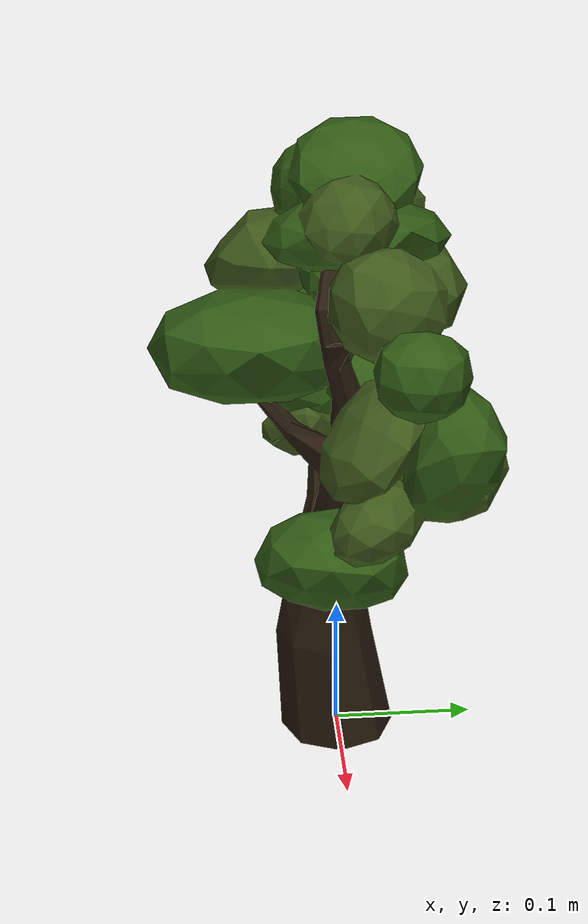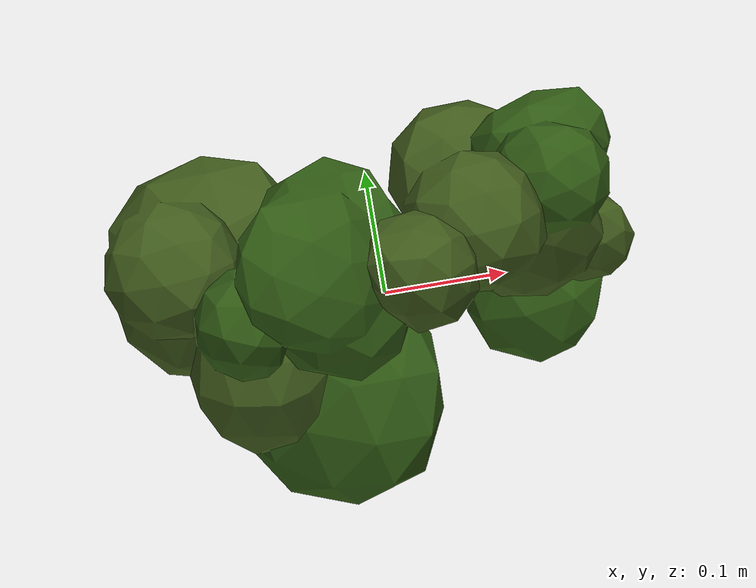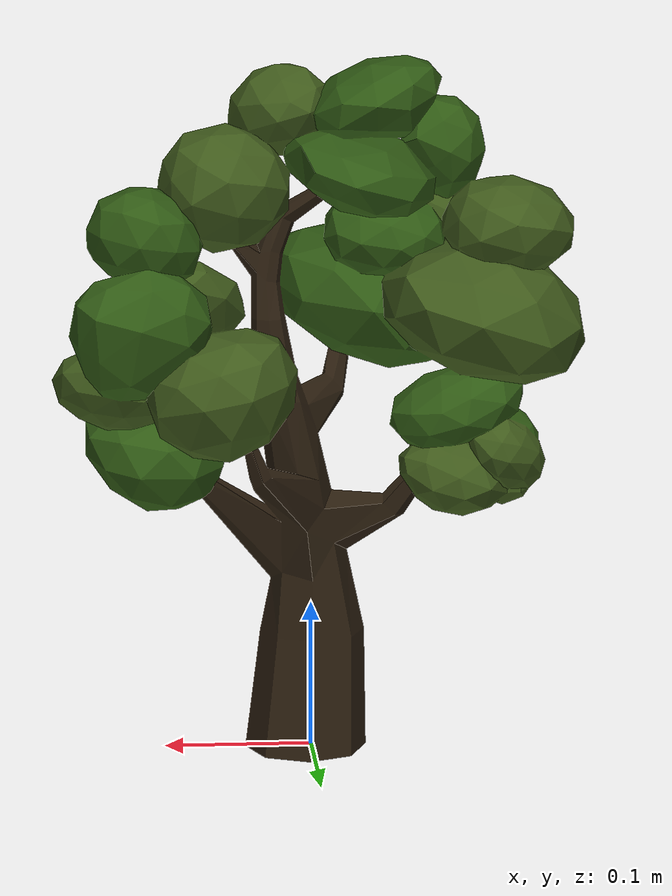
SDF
<?xml version="1.0"?>
<sdf version='1.4'>
  <model name="tree_oak">
      <static>0</static>
      <link name="link">
        <inertial>
          <pose>0 0 0 0 0 0</pose>
          <mass>1.0</mass>
          <inertia>
            <ixx>0.0385483333333</ixx>
            <ixy>000000</ixy>
            <ixz>0.000000</ixz>
            <iyy>0.107087533333</iyy>
            <iyz>0.000000</iyz>
            <izz>0.1243542</izz>
          </inertia>
        </inertial>
        <collision name="collision">
          <pose>0 0 0 0 0 0</pose>
          <geometry>
            <mesh>
                <uri>model://tree_oak/meshes/tree_oak.dae</uri>
                <scale>0.01 0.01 0.01</scale>
            </mesh>
          </geometry>
        </collision>
        <visual name="visual">
          <pose>0 0 0 0 0 0</pose>
          <geometry>
            <mesh>
                <uri>model://tree_oak/meshes/tree_oak.dae</uri>
                <scale>0.09 0.09 0.09</scale>
            </mesh>
          </geometry>
        </visual>
      </link>
    </model>
</sdf>
